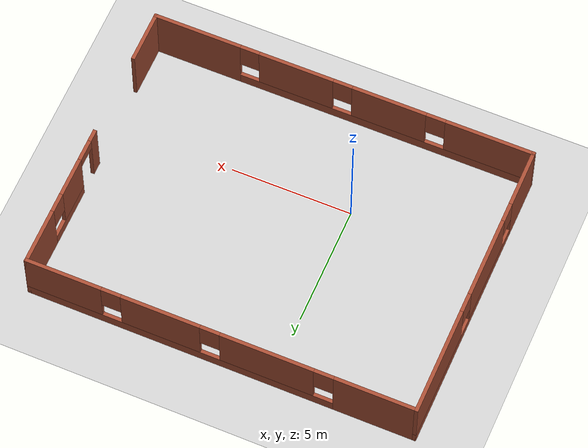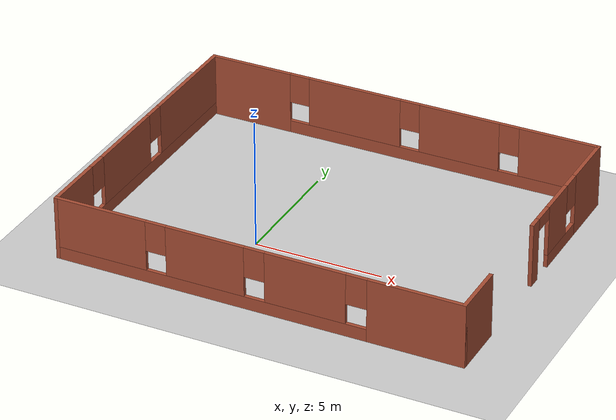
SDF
<sdf version="1.7">
 <world name="default">
  <light name="sun" type="directional">
   <pose>0 0 10 0 -0 0</pose>
   <diffuse>0.8 0.8 0.8 1</diffuse>
   <specular>0.2 0.2 0.2 1</specular>
   <attenuation>
    <range>1000</range>
    <constant>0.9</constant>
    <linear>0.01</linear>
    <quadratic>0.001</quadratic>
   </attenuation>
   <direction>-0.5 0.1 -0.9</direction>
   <spot><inner_angle>0</inner_angle><outer_angle>0</outer_angle><falloff>0</falloff></spot>
  </light>
  <scene><shadows>0</shadows><ambient>0.4 0.4 0.4 1</ambient><background>0.7 0.7 0.7 1</background></scene>
  <physics type="ode">
   <real_time_update_rate>1000</real_time_update_rate>
   <max_step_size>0.001</max_step_size>
   <real_time_factor>1</real_time_factor>
   <ode>
    <solver>
     <type>quick</type>
     <iters>150</iters>
     <precon_iters>0</precon_iters>
     <sor>1.4</sor>
     <use_dynamic_moi_rescaling>1</use_dynamic_moi_rescaling>
    </solver>
    <constraints>
     <cfm>1e-05</cfm>
     <erp>0.2</erp>
     <contact_max_correcting_vel>2000</contact_max_correcting_vel>
     <contact_surface_layer>0.01</contact_surface_layer>
    </constraints>
   </ode>
  </physics>
  <gravity>0 0 -9.8</gravity>
  <magnetic_field>6e-06 2.3e-05 -4.2e-05</magnetic_field>
  <atmosphere type="adiabatic"/>
  <audio><device>default</device></audio>
  <spherical_coordinates>
   <surface_model>EARTH_WGS84</surface_model>
   <latitude_deg>0</latitude_deg>
   <longitude_deg>0</longitude_deg>
   <elevation>0</elevation>
   <heading_deg>0</heading_deg>
  </spherical_coordinates>
  <light name="user_point_light_0" type="point">
   <pose>5.34236 -0.499197 1 0 -0 0</pose>
   <diffuse>0.5 0.5 0.5 1</diffuse>
   <specular>0.1 0.1 0.1 1</specular>
   <attenuation>
    <range>20</range>
    <constant>0.5</constant>
    <linear>0.01</linear>
    <quadratic>0.001</quadratic>
   </attenuation>
   <cast_shadows>0</cast_shadows>
   <direction>0 0 -1</direction>
   <spot><inner_angle>0</inner_angle><outer_angle>0</outer_angle><falloff>0</falloff></spot>
  </light>
  <model name="ground_plane">
   <static>1</static>
   <link name="link">
    <collision name="collision">
     <geometry><plane><normal>0 0 1</normal><size>100 100</size></plane></geometry>
     <surface>
      <contact><collide_bitmask>65535</collide_bitmask></contact>
      <friction><ode><mu>100</mu><mu2>50</mu2></ode></friction>
     </surface>
    </collision>
    <visual name="visual">
     <cast_shadows>0</cast_shadows>
     <geometry><plane><normal>0 0 1</normal><size>100 100</size></plane></geometry>
     <material>
      <script><uri>file://media/materials/scripts/gazebo.material</uri><name>Gazebo/Grey</name></script>
     </material>
    </visual>
   </link>
   <pose>-6.47636 -1.90612 0 0 -0 0</pose>
  </model>
  <model name="v2walls">
   <pose>2.025 2.025 0 0 -0 0</pose>
   <link name="Wall_0">
    <pose>0 -5.925 0 0 -0 3.14159</pose>
    <visual name="Wall_0_Visual_0">
     <pose>-6.1507 0 1.25 0 -0 0</pose>
     <geometry><box><size>3.69861 0.15 2.5</size></box></geometry>
     <material>
      <script><uri>file://media/materials/scripts/gazebo.material</uri><name>Gazebo/Bricks</name></script>
      <ambient>1 1 1 1</ambient>
     </material>
     <meta><layer>0</layer></meta>
    </visual>
    <collision name="Wall_0_Collision_0">
     <geometry><box><size>3.69861 0.15 2.5</size></box></geometry>
     <pose>-6.1507 0 1.25 0 -0 0</pose>
    </collision>
    <visual name="Wall_0_Visual_1">
     <pose>1.8493 0 0.25 0 -0 0</pose>
     <geometry><box><size>12.3014 0.15 0.5</size></box></geometry>
     <material>
      <script><uri>file://media/materials/scripts/gazebo.material</uri><name>Gazebo/Bricks</name></script>
      <ambient>1 1 1 1</ambient>
     </material>
     <meta><layer>0</layer></meta>
    </visual>
    <collision name="Wall_0_Collision_1">
     <geometry><box><size>12.3014 0.15 0.5</size></box></geometry>
     <pose>1.8493 0 0.25 0 -0 0</pose>
    </collision>
    <visual name="Wall_0_Visual_2">
     <pose>-1.9393 0 1.5 0 -0 0</pose>
     <geometry><box><size>3.12419 0.15 2</size></box></geometry>
     <material>
      <script><uri>file://media/materials/scripts/gazebo.material</uri><name>Gazebo/Bricks</name></script>
      <ambient>1 1 1 1</ambient>
     </material>
     <meta><layer>0</layer></meta>
    </visual>
    <collision name="Wall_0_Collision_2">
     <geometry><box><size>3.12419 0.15 2</size></box></geometry>
     <pose>-1.9393 0 1.5 0 -0 0</pose>
    </collision>
    <visual name="Wall_0_Visual_3">
     <pose>1.96467 0 1.5 0 -0 0</pose>
     <geometry><box><size>3.08374 0.15 2</size></box></geometry>
     <material>
      <script><uri>file://media/materials/scripts/gazebo.material</uri><name>Gazebo/Bricks</name></script>
      <ambient>1 1 1 1</ambient>
     </material>
     <meta><layer>0</layer></meta>
    </visual>
    <collision name="Wall_0_Collision_3">
     <geometry><box><size>3.08374 0.15 2</size></box></geometry>
     <pose>1.96467 0 1.5 0 -0 0</pose>
    </collision>
    <visual name="Wall_0_Visual_4">
     <pose>6.15327 0 1.5 0 -0 0</pose>
     <geometry><box><size>3.69347 0.15 2</size></box></geometry>
     <material>
      <script><uri>file://media/materials/scripts/gazebo.material</uri><name>Gazebo/Bricks</name></script>
      <ambient>1 1 1 1</ambient>
     </material>
     <meta><layer>0</layer></meta>
    </visual>
    <collision name="Wall_0_Collision_4">
     <geometry><box><size>3.69347 0.15 2</size></box></geometry>
     <pose>6.15327 0 1.5 0 -0 0</pose>
    </collision>
    <visual name="Wall_0_Visual_5">
     <pose>-3.90139 0 1.9 0 -0 0</pose>
     <geometry><box><size>0.8 0.15 1.2</size></box></geometry>
     <material>
      <script><uri>file://media/materials/scripts/gazebo.material</uri><name>Gazebo/Bricks</name></script>
      <ambient>1 1 1 1</ambient>
     </material>
     <meta><layer>0</layer></meta>
    </visual>
    <collision name="Wall_0_Collision_5">
     <geometry><box><size>0.8 0.15 1.2</size></box></geometry>
     <pose>-3.90139 0 1.9 0 -0 0</pose>
    </collision>
    <visual name="Wall_0_Visual_6">
     <pose>0.022799 0 1.9 0 -0 0</pose>
     <geometry><box><size>0.8 0.15 1.2</size></box></geometry>
     <material>
      <script><uri>file://media/materials/scripts/gazebo.material</uri><name>Gazebo/Bricks</name></script>
      <ambient>1 1 1 1</ambient>
     </material>
     <meta><layer>0</layer></meta>
    </visual>
    <collision name="Wall_0_Collision_6">
     <geometry><box><size>0.8 0.15 1.2</size></box></geometry>
     <pose>0.022799 0 1.9 0 -0 0</pose>
    </collision>
    <visual name="Wall_0_Visual_7">
     <pose>3.90653 0 1.9 0 -0 0</pose>
     <geometry><box><size>0.8 0.15 1.2</size></box></geometry>
     <material>
      <script><uri>file://media/materials/scripts/gazebo.material</uri><name>Gazebo/Bricks</name></script>
      <ambient>1 1 1 1</ambient>
     </material>
     <meta><layer>0</layer></meta>
    </visual>
    <collision name="Wall_0_Collision_7">
     <geometry><box><size>0.8 0.15 1.2</size></box></geometry>
     <pose>3.90653 0 1.9 0 -0 0</pose>
    </collision>
   </link>
   <link name="Wall_2">
    <pose>-7.925 -0 0 0 -0 1.5708</pose>
    <visual name="Wall_2_Visual_0">
     <pose>-4.75885 0 1.25 0 -0 0</pose>
     <geometry><box><size>2.4823 0.15 2.5</size></box></geometry>
     <material>
      <script><uri>file://media/materials/scripts/gazebo.material</uri><name>Gazebo/Bricks</name></script>
      <ambient>1 1 1 1</ambient>
     </material>
     <meta><layer>0</layer></meta>
    </visual>
    <collision name="Wall_2_Collision_0">
     <geometry><box><size>2.4823 0.15 2.5</size></box></geometry>
     <pose>-4.75885 0 1.25 0 -0 0</pose>
    </collision>
    <visual name="Wall_2_Visual_1">
     <pose>1.24115 0 0.25 0 -0 0</pose>
     <geometry><box><size>9.5177 0.15 0.5</size></box></geometry>
     <material>
      <script><uri>file://media/materials/scripts/gazebo.material</uri><name>Gazebo/Bricks</name></script>
      <ambient>1 1 1 1</ambient>
     </material>
     <meta><layer>0</layer></meta>
    </visual>
    <collision name="Wall_2_Collision_1">
     <geometry><box><size>9.5177 0.15 0.5</size></box></geometry>
     <pose>1.24115 0 0.25 0 -0 0</pose>
    </collision>
    <visual name="Wall_2_Visual_2">
     <pose>-1.01401 0 1.5 0 -0 0</pose>
     <geometry><box><size>3.40738 0.15 2</size></box></geometry>
     <material>
      <script><uri>file://media/materials/scripts/gazebo.material</uri><name>Gazebo/Bricks</name></script>
      <ambient>1 1 1 1</ambient>
     </material>
     <meta><layer>0</layer></meta>
    </visual>
    <collision name="Wall_2_Collision_2">
     <geometry><box><size>3.40738 0.15 2</size></box></geometry>
     <pose>-1.01401 0 1.5 0 -0 0</pose>
    </collision>
    <visual name="Wall_2_Visual_3">
     <pose>3.74484 0 1.5 0 -0 0</pose>
     <geometry><box><size>4.51032 0.15 2</size></box></geometry>
     <material>
      <script><uri>file://media/materials/scripts/gazebo.material</uri><name>Gazebo/Bricks</name></script>
      <ambient>1 1 1 1</ambient>
     </material>
     <meta><layer>0</layer></meta>
    </visual>
    <collision name="Wall_2_Collision_3">
     <geometry><box><size>4.51032 0.15 2</size></box></geometry>
     <pose>3.74484 0 1.5 0 -0 0</pose>
    </collision>
    <visual name="Wall_2_Visual_4">
     <pose>-3.1177 0 1.9 0 -0 0</pose>
     <geometry><box><size>0.8 0.15 1.2</size></box></geometry>
     <material>
      <script><uri>file://media/materials/scripts/gazebo.material</uri><name>Gazebo/Bricks</name></script>
      <ambient>1 1 1 1</ambient>
     </material>
     <meta><layer>0</layer></meta>
    </visual>
    <collision name="Wall_2_Collision_4">
     <geometry><box><size>0.8 0.15 1.2</size></box></geometry>
     <pose>-3.1177 0 1.9 0 -0 0</pose>
    </collision>
    <visual name="Wall_2_Visual_5">
     <pose>1.08968 0 1.9 0 -0 0</pose>
     <geometry><box><size>0.8 0.15 1.2</size></box></geometry>
     <material>
      <script><uri>file://media/materials/scripts/gazebo.material</uri><name>Gazebo/Bricks</name></script>
      <ambient>1 1 1 1</ambient>
     </material>
     <meta><layer>0</layer></meta>
    </visual>
    <collision name="Wall_2_Collision_5">
     <geometry><box><size>0.8 0.15 1.2</size></box></geometry>
     <pose>1.08968 0 1.9 0 -0 0</pose>
    </collision>
   </link>
   <link name="Wall_3">
    <pose>0 5.925 0 0 -0 0</pose>
    <visual name="Wall_3_Visual_0">
     <pose>-6.31509 0 1.25 0 -0 0</pose>
     <geometry><box><size>3.36982 0.15 2.5</size></box></geometry>
     <material>
      <script><uri>file://media/materials/scripts/gazebo.material</uri><name>Gazebo/Bricks</name></script>
      <ambient>1 1 1 1</ambient>
     </material>
     <meta><layer>0</layer></meta>
    </visual>
    <collision name="Wall_3_Collision_0">
     <geometry><box><size>3.36982 0.15 2.5</size></box></geometry>
     <pose>-6.31509 0 1.25 0 -0 0</pose>
    </collision>
    <visual name="Wall_3_Visual_1">
     <pose>1.68491 0 0.25 0 -0 0</pose>
     <geometry><box><size>12.6302 0.15 0.5</size></box></geometry>
     <material>
      <script><uri>file://media/materials/scripts/gazebo.material</uri><name>Gazebo/Bricks</name></script>
      <ambient>1 1 1 1</ambient>
     </material>
     <meta><layer>0</layer></meta>
    </visual>
    <collision name="Wall_3_Collision_1">
     <geometry><box><size>12.6302 0.15 0.5</size></box></geometry>
     <pose>1.68491 0 0.25 0 -0 0</pose>
    </collision>
    <visual name="Wall_3_Visual_2">
     <pose>-1.92421 0 1.5 0 -0 0</pose>
     <geometry><box><size>3.81194 0.15 2</size></box></geometry>
     <material>
      <script><uri>file://media/materials/scripts/gazebo.material</uri><name>Gazebo/Bricks</name></script>
      <ambient>1 1 1 1</ambient>
     </material>
     <meta><layer>0</layer></meta>
    </visual>
    <collision name="Wall_3_Collision_2">
     <geometry><box><size>3.81194 0.15 2</size></box></geometry>
     <pose>-1.92421 0 1.5 0 -0 0</pose>
    </collision>
    <visual name="Wall_3_Visual_3">
     <pose>2.40454 0 1.5 0 -0 0</pose>
     <geometry><box><size>3.24556 0.15 2</size></box></geometry>
     <material>
      <script><uri>file://media/materials/scripts/gazebo.material</uri><name>Gazebo/Bricks</name></script>
      <ambient>1 1 1 1</ambient>
     </material>
     <meta><layer>0</layer></meta>
    </visual>
    <collision name="Wall_3_Collision_3">
     <geometry><box><size>3.24556 0.15 2</size></box></geometry>
     <pose>2.40454 0 1.5 0 -0 0</pose>
    </collision>
    <visual name="Wall_3_Visual_4">
     <pose>6.41366 0 1.5 0 -0 0</pose>
     <geometry><box><size>3.17268 0.15 2</size></box></geometry>
     <material>
      <script><uri>file://media/materials/scripts/gazebo.material</uri><name>Gazebo/Bricks</name></script>
      <ambient>1 1 1 1</ambient>
     </material>
     <meta><layer>0</layer></meta>
    </visual>
    <collision name="Wall_3_Collision_4">
     <geometry><box><size>3.17268 0.15 2</size></box></geometry>
     <pose>6.41366 0 1.5 0 -0 0</pose>
    </collision>
    <visual name="Wall_3_Visual_5">
     <pose>-4.23018 0 1.9 0 -0 0</pose>
     <geometry><box><size>0.8 0.15 1.2</size></box></geometry>
     <material>
      <script><uri>file://media/materials/scripts/gazebo.material</uri><name>Gazebo/Bricks</name></script>
      <ambient>1 1 1 1</ambient>
     </material>
     <meta><layer>0</layer></meta>
    </visual>
    <collision name="Wall_3_Collision_5">
     <geometry><box><size>0.8 0.15 1.2</size></box></geometry>
     <pose>-4.23018 0 1.9 0 -0 0</pose>
    </collision>
    <visual name="Wall_3_Visual_6">
     <pose>0.381757 0 1.9 0 -0 0</pose>
     <geometry><box><size>0.8 0.15 1.2</size></box></geometry>
     <material>
      <script><uri>file://media/materials/scripts/gazebo.material</uri><name>Gazebo/Bricks</name></script>
      <ambient>1 1 1 1</ambient>
     </material>
     <meta><layer>0</layer></meta>
    </visual>
    <collision name="Wall_3_Collision_6">
     <geometry><box><size>0.8 0.15 1.2</size></box></geometry>
     <pose>0.381757 0 1.9 0 -0 0</pose>
    </collision>
    <visual name="Wall_3_Visual_7">
     <pose>4.42732 0 1.9 0 -0 0</pose>
     <geometry><box><size>0.8 0.15 1.2</size></box></geometry>
     <material>
      <script><uri>file://media/materials/scripts/gazebo.material</uri><name>Gazebo/Bricks</name></script>
      <ambient>1 1 1 1</ambient>
     </material>
     <meta><layer>0</layer></meta>
    </visual>
    <collision name="Wall_3_Collision_7">
     <geometry><box><size>0.8 0.15 1.2</size></box></geometry>
     <pose>4.42732 0 1.9 0 -0 0</pose>
    </collision>
   </link>
   <link name="Wall_4">
    <pose>7.925 2.875 0 0 -0 -1.5708</pose>
    <visual name="Wall_4_Visual_0">
     <pose>-1.94191 0 1.25 0 -0 0</pose>
     <geometry><box><size>2.36618 0.15 2.5</size></box></geometry>
     <material>
      <script><uri>file://media/materials/scripts/gazebo.material</uri><name>Gazebo/Bricks</name></script>
      <ambient>1 1 1 1</ambient>
     </material>
     <meta><layer>0</layer></meta>
    </visual>
    <collision name="Wall_4_Collision_0">
     <geometry><box><size>2.36618 0.15 2.5</size></box></geometry>
     <pose>-1.94191 0 1.25 0 -0 0</pose>
    </collision>
    <visual name="Wall_4_Visual_1">
     <pose>2.86221 0 1.25 0 -0 0</pose>
     <geometry><box><size>0.525578 0.15 2.5</size></box></geometry>
     <material>
      <script><uri>file://media/materials/scripts/gazebo.material</uri><name>Gazebo/Bricks</name></script>
      <ambient>1 1 1 1</ambient>
     </material>
     <meta><layer>0</layer></meta>
    </visual>
    <collision name="Wall_4_Collision_1">
     <geometry><box><size>0.525578 0.15 2.5</size></box></geometry>
     <pose>2.86221 0 1.25 0 -0 0</pose>
    </collision>
    <visual name="Wall_4_Visual_2">
     <pose>0.4703 0 0.25 0 -0 0</pose>
     <geometry><box><size>2.45825 0.15 0.5</size></box></geometry>
     <material>
      <script><uri>file://media/materials/scripts/gazebo.material</uri><name>Gazebo/Bricks</name></script>
      <ambient>1 1 1 1</ambient>
     </material>
     <meta><layer>0</layer></meta>
    </visual>
    <collision name="Wall_4_Collision_2">
     <geometry><box><size>2.45825 0.15 0.5</size></box></geometry>
     <pose>0.4703 0 0.25 0 -0 0</pose>
    </collision>
    <visual name="Wall_4_Visual_3">
     <pose>0.8703 0 1.5 0 -0 0</pose>
     <geometry><box><size>1.65825 0.15 2</size></box></geometry>
     <material>
      <script><uri>file://media/materials/scripts/gazebo.material</uri><name>Gazebo/Bricks</name></script>
      <ambient>1 1 1 1</ambient>
     </material>
     <meta><layer>0</layer></meta>
    </visual>
    <collision name="Wall_4_Collision_3">
     <geometry><box><size>1.65825 0.15 2</size></box></geometry>
     <pose>0.8703 0 1.5 0 -0 0</pose>
    </collision>
    <visual name="Wall_4_Visual_4">
     <pose>-0.358823 0 1.9 0 -0 0</pose>
     <geometry><box><size>0.8 0.15 1.2</size></box></geometry>
     <material>
      <script><uri>file://media/materials/scripts/gazebo.material</uri><name>Gazebo/Bricks</name></script>
      <ambient>1 1 1 1</ambient>
     </material>
     <meta><layer>0</layer></meta>
    </visual>
    <collision name="Wall_4_Collision_4">
     <geometry><box><size>0.8 0.15 1.2</size></box></geometry>
     <pose>-0.358823 0 1.9 0 -0 0</pose>
    </collision>
    <visual name="Wall_4_Visual_5">
     <pose>2.14942 0 2.25 0 -0 0</pose>
     <geometry><box><size>0.9 0.15 0.5</size></box></geometry>
     <material>
      <script><uri>file://media/materials/scripts/gazebo.material</uri><name>Gazebo/Bricks</name></script>
      <ambient>1 1 1 1</ambient>
     </material>
     <meta><layer>0</layer></meta>
    </visual>
    <collision name="Wall_4_Collision_5">
     <geometry><box><size>0.9 0.15 0.5</size></box></geometry>
     <pose>2.14942 0 2.25 0 -0 0</pose>
    </collision>
   </link>
   <link name="Wall_6">
    <collision name="Wall_6_Collision">
     <geometry><box><size>2.25 0.15 2.5</size></box></geometry>
     <pose>0 0 1.25 0 -0 0</pose>
    </collision>
    <visual name="Wall_6_Visual">
     <pose>0 0 1.25 0 -0 0</pose>
     <geometry><box><size>2.25 0.15 2.5</size></box></geometry>
     <material>
      <script><uri>file://media/materials/scripts/gazebo.material</uri><name>Gazebo/Bricks</name></script>
      <ambient>1 1 1 1</ambient>
     </material>
     <meta><layer>0</layer></meta>
    </visual>
    <pose>7.925 -4.875 0 0 -0 1.5708</pose>
   </link>
   <static>1</static>
  </model>
 </world>
</sdf>
